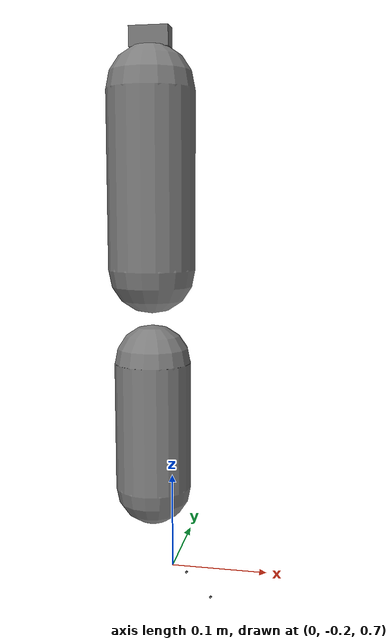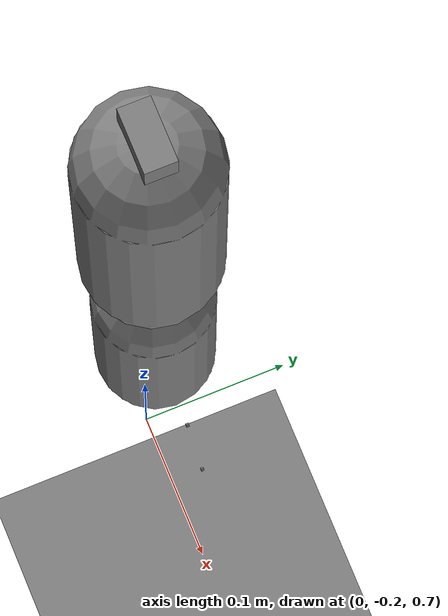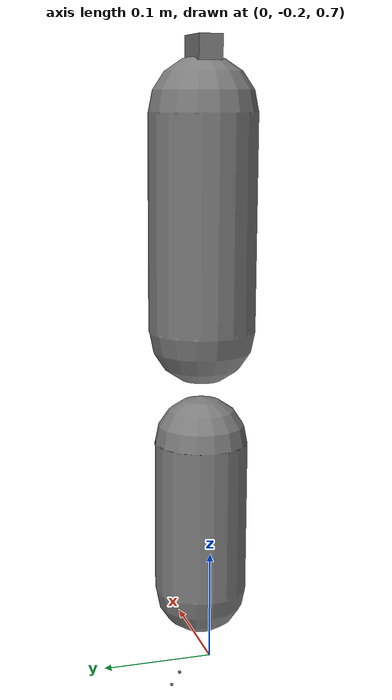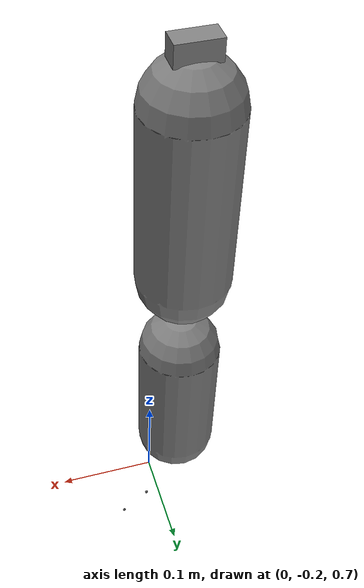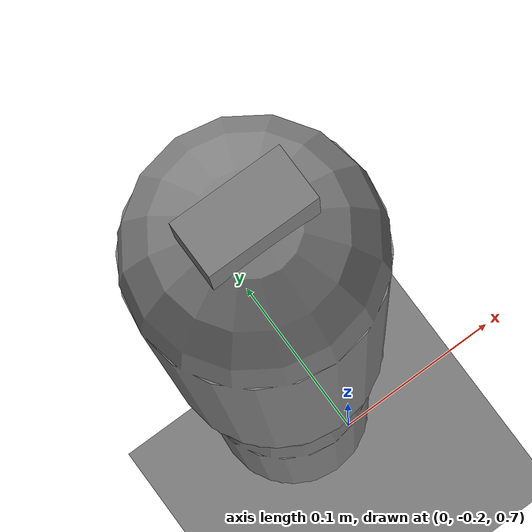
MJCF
<?xml version="1.0" encoding="utf-8"?>
<mujoco>

    <compiler angle="radian" coordinate="local" meshdir="../stls/hand" texturedir="../textures"></compiler>
    <option timestep="0.00555" iterations="20" apirate="200">
        <flag warmstart="enable"></flag>
    </option>

    <size njmax="500" nconmax="100" nuser_jnt="1" nuser_site="1" nuser_tendon="1" nuser_sensor="1" nuser_actuator="16" nstack="600000"></size>

    <visual>
        <map fogstart="3" fogend="5" force="0.1"></map>
        <quality shadowsize="4096"></quality>
    </visual>

    <default>
        <default class="robot0:asset_class">
            <geom friction="1 0.005 0.001" condim="3" margin="0.0005" contype="1" conaffinity="1"></geom>
            <joint limited="true" damping="0.1" armature="0.001" margin="0.01" frictionloss="0.001"></joint>
            <site size="0.005" rgba="0.4 0.9 0.4 1"></site>
            <general ctrllimited="true" forcelimited="true"></general>
        </default>
        <default class="robot0:D_Touch">
            <site type="box" size="0.009 0.004 0.013" pos="0 -0.004 0.018" rgba="0.8 0.8 0.8 0.15" group="4"></site>
        </default>
        <default class="robot0:DC_Hand">
            <geom material="robot0:MatColl" contype="1" conaffinity="0" group="4"></geom>
        </default>
        <default class="robot0:D_Vizual">
            <geom material="robot0:MatViz" contype="0" conaffinity="0" group="1" type="mesh"></geom>
        </default>
        <default class="robot0:free">
            <joint type="free" damping="0" armature="0" limited="false"></joint>
        </default>

        <motor ctrlrange="-1 1" ctrllimited="true"/>
        <default class="body">
          <geom type="capsule" condim="1" friction="1.0 0.05 0.05" solimp=".9 .99 .003" solref=".015 1"/>
          <joint type="hinge" damping="0.1" stiffness="5" armature=".007" limited="true" solimplimit="0 .99 .01"/>
          <site size=".04" group="3"/>
          <default class="force-torque">
            <site type="box" size=".01 .01 .02" rgba="1 0 0 1" />
          </default>
          <default class="touch">
            <site type="capsule" rgba="0 0 1 .3"/>
          </default>
        </default>

    </default>

    <contact>
        <pair geom1="robot0:C_ffdistal" geom2="robot0:C_thdistal" condim="1"></pair>
        <pair geom1="robot0:C_ffmiddle" geom2="robot0:C_thdistal" condim="1"></pair>
        <pair geom1="robot0:C_ffproximal" geom2="robot0:C_thdistal" condim="1"></pair>
        <pair geom1="robot0:C_mfproximal" geom2="robot0:C_thdistal" condim="1"></pair>
        <pair geom1="robot0:C_mfdistal" geom2="robot0:C_thdistal" condim="1"></pair>
        <pair geom1="robot0:C_rfdistal" geom2="robot0:C_thdistal" condim="1"></pair>
        <pair geom1="robot0:C_lfdistal" geom2="robot0:C_thdistal" condim="1"></pair>
        <pair geom1="robot0:C_palm0" geom2="robot0:C_thdistal" condim="1"></pair>
        <pair geom1="robot0:C_mfdistal" geom2="robot0:C_ffdistal" condim="1"></pair>
        <pair geom1="robot0:C_rfdistal" geom2="robot0:C_mfdistal" condim="1"></pair>
        <pair geom1="robot0:C_lfdistal" geom2="robot0:C_rfdistal" condim="1"></pair>
        <pair geom1="robot0:C_mfproximal" geom2="robot0:C_ffproximal" condim="1"></pair>
        <pair geom1="robot0:C_rfproximal" geom2="robot0:C_mfproximal" condim="1"></pair>
        <pair geom1="robot0:C_lfproximal" geom2="robot0:C_rfproximal" condim="1"></pair>
        <pair geom1="robot0:C_lfdistal" geom2="robot0:C_rfdistal" condim="1"></pair>
        <pair geom1="robot0:C_lfdistal" geom2="robot0:C_mfdistal" condim="1"></pair>
        <pair geom1="robot0:C_lfdistal" geom2="robot0:C_rfmiddle" condim="1"></pair>
        <pair geom1="robot0:C_lfmiddle" geom2="robot0:C_rfdistal" condim="1"></pair>
        <pair geom1="robot0:C_lfmiddle" geom2="robot0:C_rfmiddle" condim="1"></pair>
    </contact>

    <tendon>
        <fixed name="robot0:T_FFJ1c" limited="true" range="-0.001 0.001">
            <joint joint="robot0:FFJ0" coef="0.00705"></joint>
            <joint joint="robot0:FFJ1" coef="-0.00805"></joint>
        </fixed>
        <fixed name="robot0:T_MFJ1c" limited="true" range="-0.001 0.001">
            <joint joint="robot0:MFJ0" coef="0.00705"></joint>
            <joint joint="robot0:MFJ1" coef="-0.00805"></joint>
        </fixed>
        <fixed name="robot0:T_RFJ1c" limited="true" range="-0.001 0.001">
            <joint joint="robot0:RFJ0" coef="0.00705"></joint>
            <joint joint="robot0:RFJ1" coef="-0.00805"></joint>
        </fixed>
        <fixed name="robot0:T_LFJ1c" limited="true" range="-0.001 0.001">
            <joint joint="robot0:LFJ0" coef="0.00705"></joint>
            <joint joint="robot0:LFJ1" coef="-0.00805"></joint>
        </fixed>
    </tendon>

    <sensor>
        <jointpos name="robot0:Sjp_FFJ3" joint="robot0:FFJ3"></jointpos>
        <jointpos name="robot0:Sjp_FFJ2" joint="robot0:FFJ2"></jointpos>
        <jointpos name="robot0:Sjp_FFJ1" joint="robot0:FFJ1"></jointpos>
        <jointpos name="robot0:Sjp_FFJ0" joint="robot0:FFJ0"></jointpos>
        <jointpos name="robot0:Sjp_MFJ3" joint="robot0:MFJ3"></jointpos>
        <jointpos name="robot0:Sjp_MFJ2" joint="robot0:MFJ2"></jointpos>
        <jointpos name="robot0:Sjp_MFJ1" joint="robot0:MFJ1"></jointpos>
        <jointpos name="robot0:Sjp_MFJ0" joint="robot0:MFJ0"></jointpos>
        <jointpos name="robot0:Sjp_RFJ3" joint="robot0:RFJ3"></jointpos>
        <jointpos name="robot0:Sjp_RFJ2" joint="robot0:RFJ2"></jointpos>
        <jointpos name="robot0:Sjp_RFJ1" joint="robot0:RFJ1"></jointpos>
        <jointpos name="robot0:Sjp_RFJ0" joint="robot0:RFJ0"></jointpos>
        <jointpos name="robot0:Sjp_LFJ4" joint="robot0:LFJ4"></jointpos>
        <jointpos name="robot0:Sjp_LFJ3" joint="robot0:LFJ3"></jointpos>
        <jointpos name="robot0:Sjp_LFJ2" joint="robot0:LFJ2"></jointpos>
        <jointpos name="robot0:Sjp_LFJ1" joint="robot0:LFJ1"></jointpos>
        <jointpos name="robot0:Sjp_LFJ0" joint="robot0:LFJ0"></jointpos>
        <jointpos name="robot0:Sjp_THJ4" joint="robot0:THJ4"></jointpos>
        <jointpos name="robot0:Sjp_THJ3" joint="robot0:THJ3"></jointpos>
        <jointpos name="robot0:Sjp_THJ2" joint="robot0:THJ2"></jointpos>
        <jointpos name="robot0:Sjp_THJ1" joint="robot0:THJ1"></jointpos>
        <jointpos name="robot0:Sjp_THJ0" joint="robot0:THJ0"></jointpos>
        <touch name="robot0:ST_Tch_fftip" site="robot0:Tch_fftip"></touch>
        <touch name="robot0:ST_Tch_mftip" site="robot0:Tch_mftip"></touch>
        <touch name="robot0:ST_Tch_rftip" site="robot0:Tch_rftip"></touch>
        <touch name="robot0:ST_Tch_lftip" site="robot0:Tch_lftip"></touch>
        <touch name="robot0:ST_Tch_thtip" site="robot0:Tch_thtip"></touch>

        <touch name="right_upper_arm_touch"  site="right_upper_arm"/>
        <touch name="right_lower_arm_touch"  site="right_lower_arm"/>

    </sensor>

    <actuator>
        <position name="robot0:A_WRJ1" class="robot0:asset_class" user="2038" joint="robot0:WRJ1" ctrlrange="-0.489 0.14" kp="5" forcerange="-4.785 4.785"></position>
        <position name="robot0:A_WRJ0" class="robot0:asset_class" user="2036" joint="robot0:WRJ0" ctrlrange="-0.698 0.489" kp="5" forcerange="-2.175 2.175"></position>

        <position name="robot0:A_FFJ3" class="robot0:asset_class" user="2004" joint="robot0:FFJ3" ctrlrange="-0.349 0.349" kp="1" forcerange="-0.9 0.9"></position>
        <position name="robot0:A_FFJ2" class="robot0:asset_class" user="2002" joint="robot0:FFJ2" ctrlrange="0 1.571" kp="1" forcerange="-0.9 0.9"></position>
        <position name="robot0:A_FFJ1" class="robot0:asset_class" user="2000" joint="robot0:FFJ1" ctrlrange="0 1.571" kp="1" forcerange="-0.7245 0.7245"></position>
        <position name="robot0:A_MFJ3" class="robot0:asset_class" user="2010" joint="robot0:MFJ3" ctrlrange="-0.349 0.349" kp="1" forcerange="-0.9 0.9"></position>
        <position name="robot0:A_MFJ2" class="robot0:asset_class" user="2008" joint="robot0:MFJ2" ctrlrange="0 1.571" kp="1" forcerange="-0.9 0.9"></position>
        <position name="robot0:A_MFJ1" class="robot0:asset_class" user="2006" joint="robot0:MFJ1" ctrlrange="0 1.571" kp="1" forcerange="-0.7245 0.7245"></position>
        <position name="robot0:A_RFJ3" class="robot0:asset_class" user="2016" joint="robot0:RFJ3" ctrlrange="-0.349 0.349" kp="1" forcerange="-0.9 0.9"></position>
        <position name="robot0:A_RFJ2" class="robot0:asset_class" user="2014" joint="robot0:RFJ2" ctrlrange="0 1.571" kp="1" forcerange="-0.9 0.9"></position>
        <position name="robot0:A_RFJ1" class="robot0:asset_class" user="2012" joint="robot0:RFJ1" ctrlrange="0 1.571" kp="1" forcerange="-0.7245 0.7245"></position>
        <position name="robot0:A_LFJ4" class="robot0:asset_class" user="2024" joint="robot0:LFJ4" ctrlrange="0 0.785" kp="1" forcerange="-0.9 0.9"></position>
        <position name="robot0:A_LFJ3" class="robot0:asset_class" user="2022" joint="robot0:LFJ3" ctrlrange="-0.349 0.349" kp="1" forcerange="-0.9 0.9"></position>
        <position name="robot0:A_LFJ2" class="robot0:asset_class" user="2020" joint="robot0:LFJ2" ctrlrange="0 1.571" kp="1" forcerange="-0.9 0.9"></position>
        <position name="robot0:A_LFJ1" class="robot0:asset_class" user="2018" joint="robot0:LFJ1" ctrlrange="0 1.571" kp="1" forcerange="-0.7245 0.7245"></position>
        <position name="robot0:A_THJ4" class="robot0:asset_class" user="2034" joint="robot0:THJ4" ctrlrange="-1.047 1.047" kp="1" forcerange="-2.3722 2.3722"></position>
        <position name="robot0:A_THJ3" class="robot0:asset_class" user="2032" joint="robot0:THJ3" ctrlrange="0 1.222" kp="1" forcerange="-1.45 1.45"></position>
        <position name="robot0:A_THJ2" class="robot0:asset_class" user="2030" joint="robot0:THJ2" ctrlrange="-0.209 0.209" kp="1" forcerange="-0.99 0.99"></position>
        <position name="robot0:A_THJ1" class="robot0:asset_class" user="2028" joint="robot0:THJ1" ctrlrange="-0.524 0.524" kp="1" forcerange="-0.99 0.99"></position>
        <position name="robot0:A_THJ0" class="robot0:asset_class" user="2026" joint="robot0:THJ0" ctrlrange="-1.571 0" kp="1" forcerange="-0.81 0.81"></position>

        <motor name='right_shoulder_x' gear='70' joint='right_shoulder_x'/>
        <motor name='right_shoulder_y' gear='70' joint='right_shoulder_y'/>
        <motor name='right_shoulder_z' gear='70' joint='right_shoulder_z'/>
        <motor name='right_elbow'     gear='60' joint='right_elbow'/>

    </actuator>

    <asset>
        <texture type="skybox" builtin="gradient" rgb1="0.44 0.85 0.56" rgb2="0.46 0.87 0.58" width="32" height="32"></texture>

        <texture name="robot0:texplane" type="2d" builtin="checker" rgb1="0.2 0.3 0.4" rgb2="0.1 0.15 0.2" width="512" height="512"></texture>
        <texture name="robot0:texgeom" type="cube" builtin="flat" mark="cross" width="127" height="127" rgb1="0.3 0.6 0.5" rgb2="0.3 0.6 0.5" markrgb="0 0 0" random="0.01"></texture>

        <material name="robot0:MatGnd" reflectance="0.5" texture="robot0:texplane" texrepeat="1 1" texuniform="true"></material>
        <material name="robot0:MatColl" specular="1" shininess="0.3" reflectance="0.5" rgba="0.4 0.5 0.6 1"></material>
        <material name="robot0:MatViz" specular="0.75" shininess="0.1" reflectance="0.5" rgba="0.93 0.93 0.93 1"></material>
        <material name="robot0:object" texture="robot0:texgeom" texuniform="false"></material>
        <material name="floor_mat" specular="0" shininess="0.5" reflectance="0" rgba="0.2 0.2 0.2 0"></material>

        <mesh name="robot0:palm" scale="0.001 0.001 0.001" file="palm.stl"></mesh>
        <mesh name="robot0:knuckle" scale="0.001 0.001 0.001" file="knuckle.stl"></mesh>
        <mesh name="robot0:F3" scale="0.001 0.001 0.001" file="F3.stl"></mesh>
        <mesh name="robot0:F2" scale="0.001 0.001 0.001" file="F2.stl"></mesh>
        <mesh name="robot0:F1" scale="0.001 0.001 0.001" file="F1.stl"></mesh>
        <mesh name="robot0:lfmetacarpal" scale="0.001 0.001 0.001" file="lfmetacarpal.stl"></mesh>
        <mesh name="robot0:TH3_z" scale="0.001 0.001 0.001" file="TH3_z.stl"></mesh>
        <mesh name="robot0:TH2_z" scale="0.001 0.001 0.001" file="TH2_z.stl"></mesh>
        <mesh name="robot0:TH1_z" scale="0.001 0.001 0.001" file="TH1_z.stl"></mesh>
    </asset>

    <worldbody>
        <geom name="floor" type="plane" conaffinity="1" size="100 100 .2" />

    <body name="slider_bar" pos="0 0 1" childclass="body">
        <geom name="slider_bar" type="box" pos="-0.02405 -0.18311 0.24350" size="0.02 0.01 0.01" density="1141"/>

    <body name="right_upper_arm" pos="-0.02405 -0.18311 0.24350">
      <joint name="right_shoulder_x" axis="1 0 0" range="-3.142 0.785" stiffness="200" damping="20" armature=".02"/>
      <joint name="right_shoulder_y" axis="0 1 0" range="-3.142 1.047" stiffness="200" damping="20" armature=".02"/>
      <joint name="right_shoulder_z" axis="0 0 1"  range="-1.57 1.57" stiffness="200" damping="20" armature=".02"/>
      <geom name="right_upper_arm" fromto="0 0 -0.05 0 0 -0.23" size=".045" density="982"/>
      <site name="right_upper_arm" class="touch" pos="0 0 -0.14" size="0.046 0.1" zaxis="0 0 1"/>

      <body name="right_lower_arm" pos="0 0 -0.274788">
        <joint name="right_elbow" axis="0 1 0" range="-2.793 0" stiffness="150" damping="15" armature=".015"/>
        <joint name="right_elbow_x" axis="1 0 0" range="-0 0.00000001" stiffness="150" damping="15" armature=".015"/>
        <joint name="right_elbow_z" axis="0 0 1" range="-1.57 1.57" stiffness="150" damping="15" armature=".015"/>
        <geom name="right_lower_arm" fromto="0 0 -0.0525 0 0 -0.1875" size="0.04" density="1056"/>
        <site name="right_lower_arm" class="touch" pos="0 0 -0.12" size="0.041 0.0685" zaxis="0 1 0"/>

        <body name="robot0:hand mount" pos="0 0 -0.258947" quat="0 1 0 0">
            <inertial mass="0.1" pos="0 0 0" diaginertia="0.001 0.001 0.001"/>
            <body childclass="robot0:asset_class" name="robot0:palm" pos="0 0 0" euler="0 0 0">
                <inertial pos="0.006 0 0.036" quat="0.715833 0.0439898 0.0749825 0.692839" mass="0.3" diaginertia="0.001 0.001 0.001" />
                <joint name="robot0:WRJ1" type="hinge" pos="0 0 0" axis="0 1 0" range="-0.489 0.14" damping="0.5" armature="0.005" user="1123"/>
                <joint name="robot0:WRJ0" type="hinge" pos="0 0 0" axis="1 0 0" range="-0.698 0.489" damping="0.5" armature="0.005" user="1122"/>
                <joint name="robot0:WRJ2" type="hinge" pos="0 0 0" axis="0 0 1" range="-0 0.00000001" damping="0.5" armature="0.005" user="1122"/>
                <geom name="robot0:C_palm0" class="robot0:DC_Hand" size="0.032 0.0111 0.049" pos="0.011 0 0.038" type="box" rgba="0.4 0.5 0.6 0.1" />
                <geom name="robot0:C_palm1" class="robot0:DC_Hand" size="0.011 0.0111 0.025" pos="-0.032 0 0.014" type="box" rgba="0.4 0.5 0.6 0.1" />

                <body name="robot0:ffknuckle" pos="0.033 0 0.095">
                    <inertial pos="0 0 0" quat="0.520062 0.854102 0.00600072 -0.00300036" mass="0.008" diaginertia="1e-05 1e-05 1e-05" />
                    <joint name="robot0:FFJ3" pos="0 0 0" axis="0 1 0" range="-0.349 0.349" user="1103" />
                    <body name="robot0:ffproximal" pos="0 0 0">
                        <inertial pos="0 0 0.023" quat="0.707095 -0.00400054 0.00400054 0.707095" mass="0.014" diaginertia="1e-05 1e-05 1e-05" />
                        <joint name="robot0:FFJ2" pos="0 0 0" axis="1 0 0" range="0 1.571" user="1102" />
                        <geom name="robot0:C_ffproximal" class="robot0:DC_Hand" size="0.01 0.0225" pos="0 0 0.0225" type="capsule" />
                        <body name="robot0:ffmiddle" pos="0 0 0.045">
                            <inertial pos="0 0 0.011" quat="0.707107 0 0 0.707107" mass="0.012" diaginertia="1e-05 1e-05 1e-05" />
                            <joint name="robot0:FFJ1" pos="0 0 0" axis="1 0 0" range="0 1.571" user="1101" />
                            <geom name="robot0:C_ffmiddle" class="robot0:DC_Hand" size="0.00805 0.0125" pos="0 0 0.0125" type="capsule" />
                            <body name="robot0:ffdistal" pos="0 0 0.025">
                                <inertial pos="0 0 0.015" quat="0.7071 -0.00300043 0.00300043 0.7071" mass="0.01" diaginertia="1e-05 1e-05 1e-05" />
                                <joint name="robot0:FFJ0" pos="0 0 0" axis="1 0 0" range="0 1.571" user="1100" />
                                <geom name="robot0:C_ffdistal" class="robot0:DC_Hand" size="0.00705 0.012" pos="0 0 0.012" type="capsule" condim="4" />
                                <site name="robot0:S_fftip" pos="0 0 0.026" group="3" />
                                <site name="robot0:Tch_fftip" class="robot0:D_Touch" pos="0 -0.004 0.018" />
                            </body>
                        </body>
                    </body>
                </body>
                <body name="robot0:mfknuckle" pos="0.011 0 0.099">
                    <inertial pos="0 0 0" quat="0.520062 0.854102 0.00600072 -0.00300036" mass="0.008" diaginertia="1e-05 1e-05 1e-05" />
                    <joint name="robot0:MFJ3" pos="0 0 0" axis="0 1 0" range="-0.349 0.349" user="1107" />
                    <body name="robot0:mfproximal" pos="0 0 0">
                        <inertial pos="0 0 0.023" quat="0.707095 -0.00400054 0.00400054 0.707095" mass="0.014" diaginertia="1e-05 1e-05 1e-05" />
                        <joint name="robot0:MFJ2" pos="0 0 0" axis="1 0 0" range="0 1.571" user="1106" />
                        <geom name="robot0:C_mfproximal" class="robot0:DC_Hand" size="0.01 0.0225" pos="0 0 0.0225" type="capsule" />
                        <body name="robot0:mfmiddle" pos="0 0 0.045">
                            <inertial pos="0 0 0.012" quat="0.707107 0 0 0.707107" mass="0.012" diaginertia="1e-05 1e-05 1e-05" />
                            <joint name="robot0:MFJ1" pos="0 0 0" axis="1 0 0" range="0 1.571" user="1105" />
                            <geom name="robot0:C_mfmiddle" class="robot0:DC_Hand" size="0.00805 0.0125" pos="0 0 0.0125" type="capsule" />
                            <body name="robot0:mfdistal" pos="0 0 0.025">
                                <inertial pos="0 0 0.015" quat="0.7071 -0.00300043 0.00300043 0.7071" mass="0.01" diaginertia="1e-05 1e-05 1e-05" />
                                <joint name="robot0:MFJ0" pos="0 0 0" axis="1 0 0" range="0 1.571" user="1104" />
                                <geom name="robot0:C_mfdistal" class="robot0:DC_Hand" size="0.00705 0.012" pos="0 0 0.012" type="capsule" condim="4" />
                                <site name="robot0:S_mftip" pos="0 0 0.026" group="3" />
                                <site name="robot0:Tch_mftip" class="robot0:D_Touch" pos="0 -0.004 0.018" />
                            </body>
                        </body>
                    </body>
                </body>
                <body name="robot0:rfknuckle" pos="-0.011 0 0.095">
                    <inertial pos="0 0 0" quat="0.520062 0.854102 0.00600072 -0.00300036" mass="0.008" diaginertia="1e-05 1e-05 1e-05" />
                    <joint name="robot0:RFJ3" pos="0 0 0" axis="0 1 0" range="-0.349 0.349" user="1111" />
                    <body name="robot0:rfproximal" pos="0 0 0">
                        <inertial pos="0 0 0.023" quat="0.707095 -0.00400054 0.00400054 0.707095" mass="0.014" diaginertia="1e-05 1e-05 1e-05" />
                        <joint name="robot0:RFJ2" pos="0 0 0" axis="1 0 0" range="0 1.571" user="1110" />
                        <geom name="robot0:C_rfproximal" class="robot0:DC_Hand" size="0.01 0.0225" pos="0 0 0.0225" type="capsule" />
                        <body name="robot0:rfmiddle" pos="0 0 0.045">
                            <inertial pos="0 0 0.012" quat="0.707107 0 0 0.707107" mass="0.012" diaginertia="1e-05 1e-05 1e-05" />
                            <joint name="robot0:RFJ1" pos="0 0 0" axis="1 0 0" range="0 1.571" user="1109" />
                            <geom name="robot0:C_rfmiddle" class="robot0:DC_Hand" size="0.00805 0.0125" pos="0 0 0.0125" type="capsule" />
                            <body name="robot0:rfdistal" pos="0 0 0.025">
                                <inertial pos="0 0 0.015" quat="0.7071 -0.00300043 0.00300043 0.7071" mass="0.01" diaginertia="1e-05 1e-05 1e-05" />
                                <joint name="robot0:RFJ0" pos="0 0 0" axis="1 0 0" range="0 1.571" user="1108" />
                                <geom name="robot0:C_rfdistal" class="robot0:DC_Hand" size="0.00705 0.012" pos="0 0 0.012" type="capsule" condim="4" />
                                <site name="robot0:S_rftip" pos="0 0 0.026" group="3" />
                                <site name="robot0:Tch_rftip" class="robot0:D_Touch" pos="0 -0.004 0.018" />
                            </body>
                        </body>
                    </body>
                </body>
                <body name="robot0:lfmetacarpal" pos="-0.017 0 0.044">
                    <inertial pos="-0.014 0.001 0.014" quat="0.709167 -0.0920216 -0.0630148 0.696164" mass="0.075" diaginertia="1e-05 1e-05 1e-05" />
                    <joint name="robot0:LFJ4" pos="0 0 0" axis="0.570977 0 0.820966" range="0 0.785" user="1116" />
                    <geom name="robot0:C_lfmetacarpal" class="robot0:DC_Hand" size="0.0095 0.0111 0.025" pos="-0.0165 0 0.01" type="box" rgba="0.4 0.5 0.6 0.2" />
                    <body name="robot0:lfknuckle" pos="-0.017 0 0.044">
                        <inertial pos="0 0 0" quat="0.520062 0.854102 0.00600072 -0.00300036" mass="0.008" diaginertia="1e-05 1e-05 1e-05" />
                        <joint name="robot0:LFJ3" pos="0 0 0" axis="0 1 0" range="-0.349 0.349" user="1115" />
                        <body name="robot0:lfproximal" pos="0 0 0">
                            <inertial pos="0 0 0.023" quat="0.707095 -0.00400054 0.00400054 0.707095" mass="0.014" diaginertia="1e-05 1e-05 1e-05" />
                            <joint name="robot0:LFJ2" pos="0 0 0" axis="1 0 0" range="0 1.571" user="1114" />
                            <geom name="robot0:C_lfproximal" class="robot0:DC_Hand" size="0.01 0.0225" pos="0 0 0.0225" type="capsule" />
                            <body name="robot0:lfmiddle" pos="0 0 0.045">
                                <inertial pos="0 0 0.012" quat="0.707107 0 0 0.707107" mass="0.012" diaginertia="1e-05 1e-05 1e-05" />
                                <joint name="robot0:LFJ1" pos="0 0 0" axis="1 0 0" range="0 1.571" user="1113" />
                                <geom name="robot0:C_lfmiddle" class="robot0:DC_Hand" size="0.00805 0.0125" pos="0 0 0.0125" type="capsule" />
                                <body name="robot0:lfdistal" pos="0 0 0.025">
                                    <inertial pos="0 0 0.015" quat="0.7071 -0.00300043 0.00300043 0.7071" mass="0.01" diaginertia="1e-05 1e-05 1e-05" />
                                    <joint name="robot0:LFJ0" pos="0 0 0" axis="1 0 0" range="0 1.571" user="1112" />
                                    <geom name="robot0:C_lfdistal" class="robot0:DC_Hand" size="0.00705 0.012" pos="0 0 0.012" type="capsule" condim="4" />
                                    <site name="robot0:S_lftip" pos="0 0 0.026" group="3" />
                                    <site name="robot0:Tch_lftip" class="robot0:D_Touch" pos="0 -0.004 0.018" />
                                </body>
                            </body>
                        </body>
                    </body>
                </body>
                <body name="robot0:thbase" pos="0.034 -0.009 0.029" quat="0.923956 0 0.382499 0">
                    <inertial pos="0 0 0" mass="0.01" diaginertia="1e-05 1e-05 1e-05" />
                    <joint name="robot0:THJ4" pos="0 0 0" axis="0 0 -1" range="-1.047 1.047" user="1121" />
                    <geom name="robot0:V_thbase" size="0.001 0.001 0.001" type="box" group="1" />
                    <body name="robot0:thproximal" pos="0 0 0">
                        <inertial pos="0 0 0.017" quat="0.981604 0 0.000999597 0.190923" mass="0.016" diaginertia="1e-05 1e-05 1e-05" />
                        <joint name="robot0:THJ3" pos="0 0 0" axis="1 0 0" range="0 1.222" user="1120" />
                        <geom name="robot0:C_thproximal" class="robot0:DC_Hand" size="0.013 0.019" pos="0 0 0.019" type="capsule" rgba="0.4 0.5 0.6 0.1" />
                        <body name="robot0:thhub" pos="0 0 0.038">
                            <inertial pos="0 0 0" mass="0.002" diaginertia="1e-05 1e-05 1e-05" />
                            <joint name="robot0:THJ2" pos="0 0 0" axis="1 0 0" range="-0.209 0.209" user="1119" />
                            <geom name="robot0:V_thhub" size="0.001 0.001 0.001" type="box" group="1" />
                            <body name="robot0:thmiddle" pos="0 0 0">
                                <inertial pos="0 0 0.016" quat="0.999971 -0.000999971 -0.00699979 0.00299991" mass="0.016" diaginertia="1e-05 1e-05 1e-05" />
                                <joint name="robot0:THJ1" pos="0 0 0" axis="0 1 0" range="-0.524 0.524" user="1118" />
                                <geom name="robot0:C_thmiddle" class="robot0:DC_Hand" size="0.011 0.016" pos="0 0 0.016" type="capsule" />
                                <body name="robot0:thdistal" pos="0 0 0.032">
                                    <inertial pos="0 0 0.016" quat="0.99887 -0.00499935 -0.0469939 0.00499935" mass="0.016" diaginertia="1e-05 1e-05 1e-05" />
                                    <joint name="robot0:THJ0" pos="0 0 0" axis="0 1 0" range="-1.571 0" user="1117" />
                                    <geom name="robot0:C_thdistal" class="robot0:DC_Hand" size="0.00918 0.013" pos="0 0 0.013" type="capsule" condim="4" />
                                    <site name="robot0:S_thtip" pos="0 0 0.0275" group="3" />
                                    <site name="robot0:Tch_thtip" class="robot0:D_Touch" pos="-0.005 0 0.02" size="0.005 0.011 0.016" />
                                </body>
                            </body>
                        </body>
                    </body>
                </body>

            </body>
        </body>

      </body>
    </body>
    </body>

        <light directional="true" ambient="0.2 0.2 0.2" diffuse="0.8 0.8 0.8" specular="0.3 0.3 0.3" castshadow="false" pos="0 1 4" dir="0 0 -1" name="light0"></light>
    </worldbody>
</mujoco>
